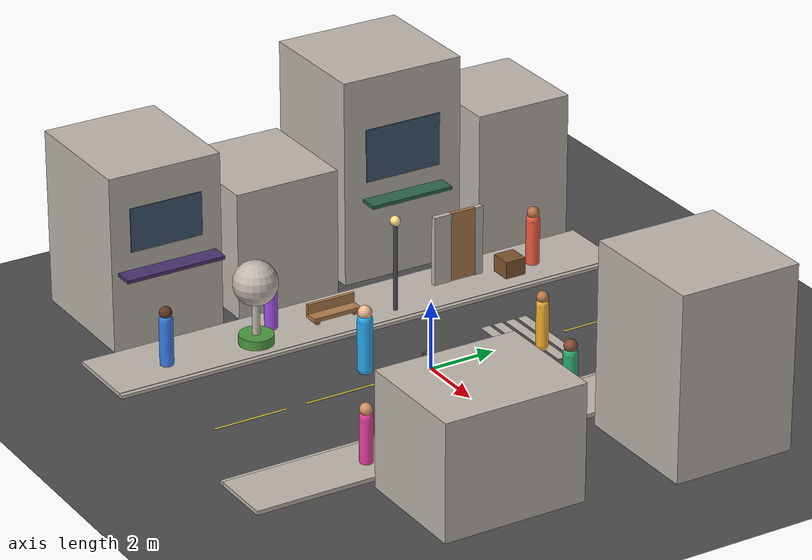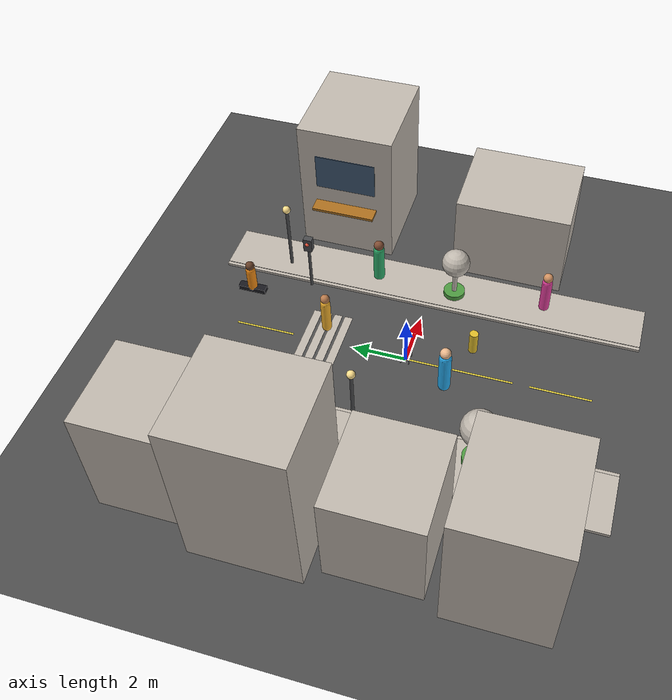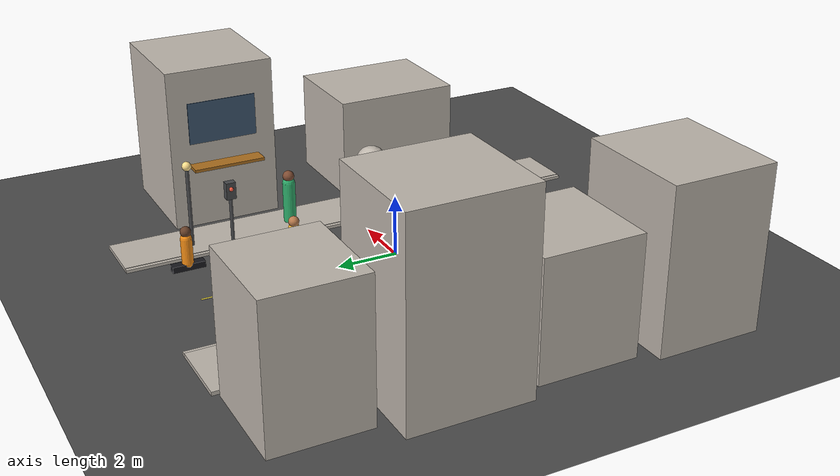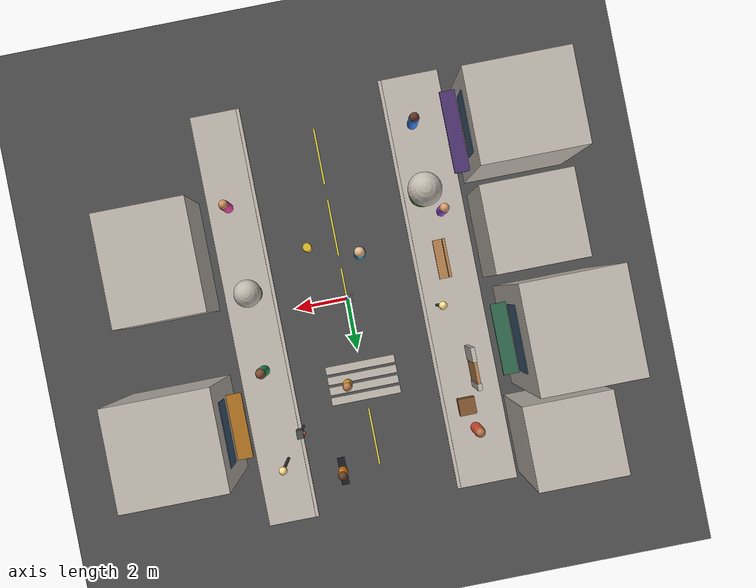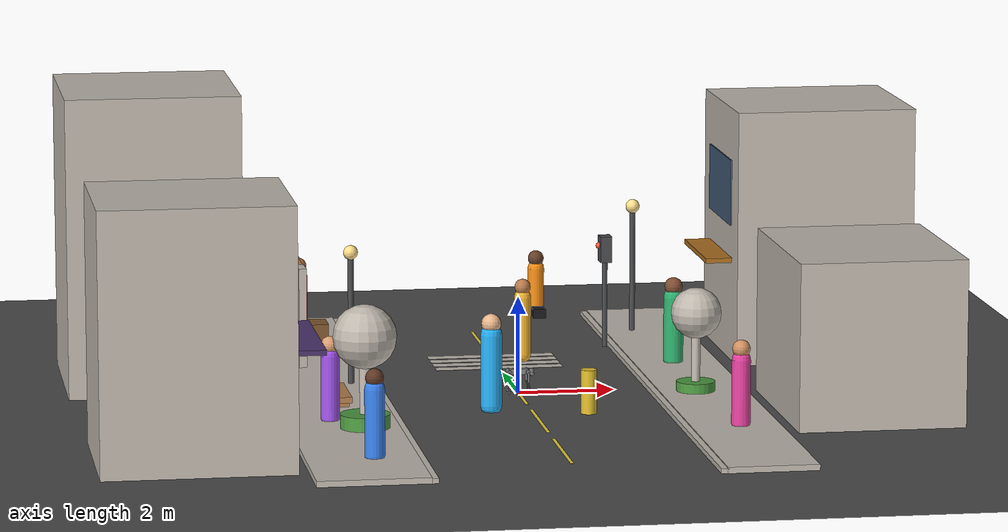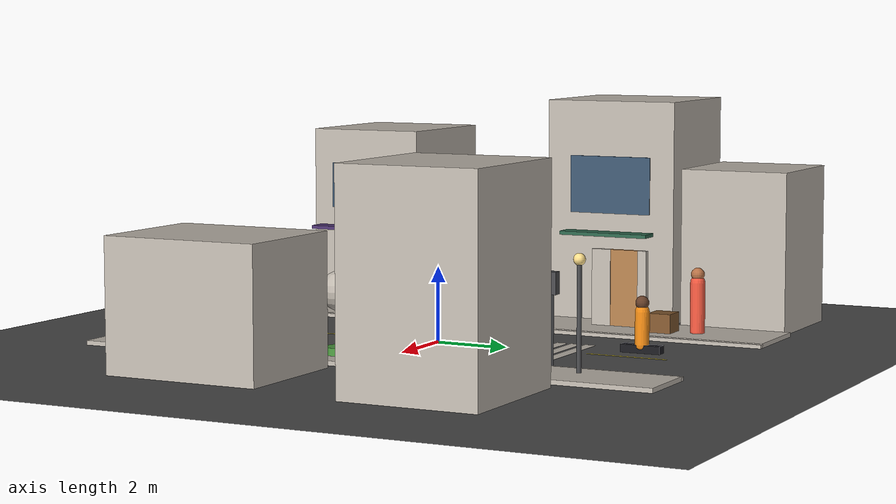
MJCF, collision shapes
<mujoco model="parcel_city_block_b">
  <include file="../../../third_party/unitree_mujoco/unitree_robots/go2/go2.xml"/>
  <compiler meshdir="../../../third_party/unitree_mujoco/unitree_robots/go2/assets"
    texturedir="assets/textures"
    angle="radian" autolimits="true"/>

  <statistic center="0 0 0.4" extent="8"/>

  <visual>
    <!-- Deliberately a different hour of day from city_block.xml: a scene
         variant that only moves boxes is a weak held-out set. -->
    <headlight diffuse="0.52 0.52 0.55" ambient="0.30 0.31 0.34" specular="0 0 0"/>
    <rgba haze="0.52 0.54 0.58 1"/>
    <global azimuth="35" elevation="-24"/>
  </visual>

  <asset>
    <texture type="skybox" builtin="gradient" rgb1="0.55 0.60 0.68" rgb2="0.12 0.14 0.18"
      width="512" height="3072"/>
    <texture type="2d" name="asphalt_b" file="road_asphalt_b.png"/>
    <texture type="cube" name="sidewalk_b" file="sidewalk_concrete_b.png"/>
    <texture type="cube" name="curb_b" file="curb_concrete.png"/>
    <texture type="cube" name="crosswalk_b" file="crosswalk_paint.png"/>
    <texture type="cube" name="brick_b" file="facade_brick_b.png"/>
    <texture type="cube" name="beige_b" file="facade_beige_b.png"/>
    <texture type="cube" name="plaster_b" file="facade_plaster_b.png"/>
    <texture type="cube" name="bench_b" file="bench_wood_b.png"/>
    <texture type="cube" name="door_b" file="door_wood_b.png"/>
    <texture type="cube" name="metal_b" file="city_metal.png"/>
    <texture type="cube" name="bark_b" file="tree_bark.png"/>
    <texture type="cube" name="canopy_b" file="tree_canopy.png"/>
    <texture type="cube" name="grass_b" file="grass.png"/>

    <material name="asphalt" texture="asphalt_b" texuniform="true" texrepeat="6 6"
      reflectance="0.04"/>
    <material name="sidewalk" texture="sidewalk_b" texuniform="true" texrepeat="1.3 1.3"
      reflectance="0.07"/>
    <material name="building_a" texture="plaster_b" texuniform="true" texrepeat="0.45 0.45"/>
    <material name="building_b" texture="brick_b" texuniform="true" texrepeat="0.6 0.6"/>
    <material name="building_c" texture="beige_b" texuniform="true" texrepeat="0.4 0.4"/>
    <material name="crosswalk" texture="crosswalk_b" texuniform="false" texrepeat="3 1"/>
    <material name="bench" texture="bench_b" texuniform="false" texrepeat="3 1"/>
    <material name="curb" texture="curb_b" texuniform="true" texrepeat="3 3"/>
    <material name="city_grass" texture="grass_b" texuniform="true" texrepeat="1.2 1.2"/>
    <material name="city_glass" rgba="0.24 0.34 0.44 1" reflectance="0.28"/>
    <material name="city_metal" texture="metal_b" texuniform="true" texrepeat="1 1"
      rgba="0.38 0.40 0.44 1"/>
    <material name="entry_wall" texture="brick_b" texuniform="true" texrepeat="0.8 0.8"/>
    <material name="door_leaf" texture="door_b" texuniform="true" texrepeat="0.7 0.7"/>
    <material name="tree_bark" texture="bark_b" texuniform="true" texrepeat="1.4 1.4"/>
    <material name="tree_canopy" texture="canopy_b" texuniform="true" texrepeat="1.3 1.3"/>
    <material name="crate_wood" texture="bench_b" texuniform="true" texrepeat="1.5 1.5"
      rgba="0.72 0.68 0.60 1"/>

    <!-- Three storefronts this block does not share with city_block.xml. -->
    <texture type="2d" name="shopfront_e" file="storefront_e.png"/>
    <texture type="2d" name="shopfront_f" file="storefront_f.png"/>
    <texture type="2d" name="shopfront_g" file="storefront_g.png"/>
    <material name="shopfront_e" texture="shopfront_e"/>
    <material name="shopfront_f" texture="shopfront_f"/>
    <material name="shopfront_g" texture="shopfront_g"/>

    <texture type="2d" name="person_1" file="person_1.png"/>
    <texture type="2d" name="person_2" file="person_2.png"/>
    <texture type="2d" name="person_3" file="person_3.png"/>
    <texture type="2d" name="person_4" file="person_4.png"/>
    <texture type="2d" name="person_5" file="person_5.png"/>
    <texture type="2d" name="person_6" file="person_6.png"/>
    <material name="person_1" texture="person_1"/>
    <material name="person_2" texture="person_2"/>
    <material name="person_3" texture="person_3"/>
    <material name="person_4" texture="person_4"/>
    <material name="person_5" texture="person_5"/>
    <material name="person_6" texture="person_6"/>

    <mesh name="human_a" inertia="shell"
      file="../../../../../src/parcel_robot/scenes/assets/meshes/human_a.obj"/>
    <mesh name="human_b" inertia="shell"
      file="../../../../../src/parcel_robot/scenes/assets/meshes/human_b.obj"/>
    <mesh name="human_c" inertia="shell"
      file="../../../../../src/parcel_robot/scenes/assets/meshes/human_c.obj"/>
    <mesh name="human_d" inertia="shell"
      file="../../../../../src/parcel_robot/scenes/assets/meshes/human_d.obj"/>
    <mesh name="shopfront_b1" inertia="shell" scale="3.2 1 2.7"
      file="../../../../../src/parcel_robot/scenes/assets/meshes/panel.obj"/>
    <mesh name="shopfront_b2" inertia="shell" scale="2.5 1 2.4"
      file="../../../../../src/parcel_robot/scenes/assets/meshes/panel.obj"/>
    <mesh name="shopfront_b3" inertia="shell" scale="2.8 1 2.9"
      file="../../../../../src/parcel_robot/scenes/assets/meshes/panel.obj"/>
    <mesh name="shopfront_b4" inertia="shell" scale="2.6 1 2.5"
      file="../../../../../src/parcel_robot/scenes/assets/meshes/panel.obj"/>
  </asset>

  <worldbody>
    <light pos="-4 3 6" dir="0.3 -0.2 -1" diffuse="0.72 0.71 0.68" castshadow="true"/>
    <light pos="4 -3 5" dir="-0.25 0.2 -1" diffuse="0.30 0.32 0.36"/>

    <!-- The street runs NORTH-SOUTH here. -->
    <geom name="road" type="plane" size="12 12 0.05" material="asphalt" friction="0.9"/>

    <!-- Sidewalks flank the carriageway on the west and the east. -->
    <geom name="sidewalk" type="box" pos="-4.0 0 0.06" size="1.1 8 0.06" material="sidewalk"/>
    <geom name="curb_west" type="box" pos="-2.85 0 0.05" size="0.08 8 0.05" material="curb"/>
    <geom name="sidewalk_east" type="box" pos="3.7 0 0.06" size="0.9 8 0.06" material="sidewalk"/>
    <geom name="curb_east" type="box" pos="2.75 0 0.05" size="0.08 8 0.05" material="curb"/>

    <!-- Centre line, dashed along the street's own axis. -->
    <geom name="lane_1" type="box" pos="0 -5.6 0.003" size="0.035 1.1 0.003" rgba="0.9 0.82 0.24 1"/>
    <geom name="lane_2" type="box" pos="0 -2.8 0.003" size="0.035 1.1 0.003" rgba="0.9 0.82 0.24 1"/>
    <geom name="lane_3" type="box" pos="0 -0.1 0.003" size="0.035 1.1 0.003" rgba="0.9 0.82 0.24 1"/>
    <geom name="lane_4" type="box" pos="0 5.4 0.003" size="0.035 1.1 0.003" rgba="0.9 0.82 0.24 1"/>

    <!-- Crossing near the north end, stripes running across the carriageway. -->
    <geom name="xw1" type="box" pos="0 2.6 0.002" size="1.35 0.15 0.002" material="crosswalk"/>
    <geom name="xw2" type="box" pos="0 3.0 0.002" size="1.35 0.15 0.002" material="crosswalk"/>
    <geom name="xw3" type="box" pos="0 3.4 0.002" size="1.35 0.15 0.002" material="crosswalk"/>
    <geom name="xw4" type="box" pos="0 3.8 0.002" size="1.35 0.15 0.002" material="crosswalk"/>

    <!-- Five buildings behind the west sidewalk, two behind the east one. -->
    <geom name="bldg_1" type="box" pos="-7.2 -5.2 2.6" size="1.9 1.7 2.6" material="building_a"/>
    <geom name="bldg_2" type="box" pos="-7.0 -1.4 1.9" size="1.7 1.6 1.9" material="building_b"/>
    <geom name="bldg_3" type="box" pos="-7.4 2.5 3.1" size="1.8 1.9 3.1" material="building_c"/>
    <geom name="bldg_4" type="box" pos="-6.8 6.3 2.2" size="1.6 1.5 2.2" material="building_b"/>
    <geom name="bldg_5" type="box" pos="6.9 3.8 2.7" size="1.9 1.8 2.7" material="building_a"/>
    <geom name="bldg_6" type="box" pos="6.6 -2.6 1.7" size="1.7 2.1 1.7" material="building_c"/>

    <!-- Storefronts. West-side faces look east (+x); the east-side ones look
         west (-x), so the block reads correctly from the carriageway. -->
    <geom name="vis_shopfront_1" type="mesh" mesh="shopfront_b1" material="shopfront_e"
      pos="-5.265 -5.2 0.06" euler="0 0 -1.5707963" contype="0" conaffinity="0" density="0"/>
    <geom name="vis_shopfront_2" type="mesh" mesh="shopfront_b2" material="shopfront_f"
      pos="-5.265 -1.4 0.06" euler="0 0 -1.5707963" contype="0" conaffinity="0" density="0"/>
    <geom name="vis_shopfront_3" type="mesh" mesh="shopfront_b3" material="shopfront_g"
      pos="-5.565 2.5 0.06" euler="0 0 -1.5707963" contype="0" conaffinity="0" density="0"/>
    <geom name="vis_shopfront_4" type="mesh" mesh="shopfront_b4" material="shopfront_f"
      pos="4.965 3.8 0.06" euler="0 0 1.5707963" contype="0" conaffinity="0" density="0"/>

    <geom name="vis_awning_1" type="box" pos="-5.02 -5.2 2.32" size="0.28 1.50 0.05"
      rgba="0.30 0.20 0.44 1" contype="0" conaffinity="0" density="0"/>
    <geom name="vis_awning_3" type="box" pos="-5.32 2.5 2.50" size="0.28 1.30 0.05"
      rgba="0.18 0.40 0.30 1" contype="0" conaffinity="0" density="0"/>
    <geom name="vis_awning_4" type="box" pos="4.72 3.8 2.16" size="0.28 1.20 0.05"
      rgba="0.68 0.44 0.12 1" contype="0" conaffinity="0" density="0"/>

    <!-- Upper glazing above the shopfronts. -->
    <geom name="window_1" type="box" pos="-5.28 -5.2 3.55" size="0.015 1.1 0.65"
      material="city_glass"/>
    <geom name="window_2" type="box" pos="-5.58 2.5 3.85" size="0.015 1.2 0.8"
      material="city_glass"/>
    <geom name="window_3" type="box" pos="4.98 3.8 3.60" size="0.015 1.15 0.7"
      material="city_glass"/>

    <!-- Planted plaza: two trees, on opposite sides this time. -->
    <geom name="planter_1" type="cylinder" pos="-3.6 -3.4 0.20" size="0.5 0.20" material="city_grass"/>
    <geom name="tree_1" type="cylinder" pos="-3.6 -3.4 0.95" size="0.11 0.78" material="tree_bark"/>
    <geom name="tree_top_1" type="sphere" pos="-3.6 -3.4 1.95" size="0.64" material="tree_canopy"/>
    <geom name="planter_2" type="cylinder" pos="3.55 -0.9 0.16" size="0.40 0.16" material="city_grass"/>
    <geom name="tree_2" type="cylinder" pos="3.55 -0.9 0.86" size="0.09 0.70" material="tree_bark"/>
    <geom name="tree_top_2" type="sphere" pos="3.55 -0.9 1.74" size="0.52" material="tree_canopy"/>

    <geom name="entry_wall_1" type="box" pos="-4.15 2.90 1.17" size="0.08 0.275 1.05"
      material="entry_wall"/>
    <geom name="door_1" type="box" pos="-4.15 3.575 1.17" size="0.06 0.4 1.05"
      material="door_leaf"/>
    <geom name="entry_wall_2" type="box" pos="-4.15 4.10 1.17" size="0.08 0.125 1.05"
      material="entry_wall"/>

    <!-- Street furniture. -->
    <geom name="lamp_post_1" type="cylinder" pos="-3.35 0.9 1.40" size="0.06 1.40" material="city_metal"/>
    <geom name="lamp_head_1" type="sphere" pos="-3.35 0.9 2.86" size="0.15" rgba="1 0.88 0.55 1"/>
    <geom name="lamp_post_2" type="cylinder" pos="3.40 5.6 1.40" size="0.06 1.40" material="city_metal"/>
    <geom name="lamp_head_2" type="sphere" pos="3.40 5.6 2.86" size="0.15" rgba="1 0.88 0.55 1"/>
    <geom name="signal_post" type="cylinder" pos="2.60 4.5 1.05" size="0.055 1.05" material="city_metal"/>
    <geom name="signal_box" type="box" pos="2.60 4.5 2.14" size="0.12 0.16 0.28" material="city_metal"/>
    <geom name="signal_walk" type="sphere" pos="2.47 4.5 2.21" size="0.07" rgba="0.95 0.35 0.25 1"/>

    <!-- Bench, turned to face the street rather than along it. -->
    <geom name="bench_seat" type="box" pos="-3.85 -0.8 0.28" size="0.22 0.75 0.06" material="bench"/>
    <geom name="bench_back" type="box" pos="-4.03 -0.8 0.44" size="0.05 0.75 0.19" material="bench"/>
    <geom name="bench_leg_l" type="box" pos="-3.85 -1.40 0.14" size="0.18 0.05 0.14" material="bench"/>
    <geom name="bench_leg_r" type="box" pos="-3.85 -0.20 0.14" size="0.18 0.05 0.14" material="bench"/>

    <geom name="obstacle_crate" type="box" pos="-3.7 4.9 0.32" size="0.32 0.32 0.32"
      material="crate_wood"/>
    <geom name="obstacle_bollard" type="cylinder" pos="1.1 -2.2 0.45" size="0.16 0.45"
      rgba="0.88 0.74 0.16 1"/>

    <body name="owner" mocap="true" pos="-0.8 -1.6 0">
      <geom name="owner_body" type="capsule" fromto="0 0 0.1 0 0 1.55" size="0.22"
        contype="0" conaffinity="0" rgba="0.15 0.68 0.95 1" group="4"/>
      <geom name="owner_head" type="sphere" pos="0 0 1.78" size="0.2"
        contype="0" conaffinity="0" rgba="0.92 0.72 0.55 1" group="4"/>
      <geom name="vis_owner" type="mesh" mesh="human_a" material="person_4"
        euler="0 0 1.35" contype="0" conaffinity="0" density="0"/>
    </body>

    <body name="pedestrian_1" mocap="true" pos="-3.9 5.8 0">
      <geom name="pedestrian_1_body" type="capsule" fromto="0 0 0.15 0 0 1.48" size="0.20"
        contype="0" conaffinity="0" rgba="0.95 0.35 0.25 1" group="4"/>
      <geom name="pedestrian_1_head" type="sphere" pos="0 0 1.7" size="0.18"
        contype="0" conaffinity="0" rgba="0.72 0.45 0.28 1" group="4"/>
      <geom name="vis_pedestrian_1" type="mesh" mesh="human_c" material="person_6"
        euler="0 0 -1.85" contype="0" conaffinity="0" density="0"/>
    </body>
    <body name="pedestrian_2" mocap="true" pos="-4.2 -2.6 0">
      <geom name="pedestrian_2_body" type="capsule" fromto="0 0 0.15 0 0 1.42" size="0.19"
        contype="0" conaffinity="0" rgba="0.62 0.32 0.9 1" group="4"/>
      <geom name="pedestrian_2_head" type="sphere" pos="0 0 1.64" size="0.18"
        contype="0" conaffinity="0" rgba="0.86 0.62 0.44 1" group="4"/>
      <geom name="vis_pedestrian_2" type="mesh" mesh="human_d" material="person_1"
        euler="0 0 0.35" contype="0" conaffinity="0" density="0"/>
    </body>
    <body name="pedestrian_3" mocap="true" pos="3.65 2.1 0">
      <geom name="pedestrian_3_body" type="capsule" fromto="0 0 0.15 0 0 1.5" size="0.21"
        contype="0" conaffinity="0" rgba="0.18 0.68 0.42 1" group="4"/>
      <geom name="pedestrian_3_head" type="sphere" pos="0 0 1.73" size="0.19"
        contype="0" conaffinity="0" rgba="0.5 0.3 0.2 1" group="4"/>
      <geom name="vis_pedestrian_3" type="mesh" mesh="human_a" material="person_2"
        euler="0 0 2.85" contype="0" conaffinity="0" density="0"/>
    </body>
    <body name="pedestrian_4" mocap="true" pos="0.6 3.2 0">
      <geom name="pedestrian_4_body" type="capsule" fromto="0 0 0.15 0 0 1.38" size="0.18"
        contype="0" conaffinity="0" rgba="0.96 0.7 0.18 1" group="4"/>
      <geom name="pedestrian_4_head" type="sphere" pos="0 0 1.6" size="0.17"
        contype="0" conaffinity="0" rgba="0.72 0.48 0.3 1" group="4"/>
      <geom name="vis_pedestrian_4" type="mesh" mesh="human_b" material="person_5"
        euler="0 0 -0.45" contype="0" conaffinity="0" density="0"/>
    </body>
    <body name="pedestrian_5" mocap="true" pos="-3.75 -6.1 0">
      <geom name="pedestrian_5_body" type="capsule" fromto="0 0 0.15 0 0 1.46" size="0.20"
        contype="0" conaffinity="0" rgba="0.22 0.5 0.92 1" group="4"/>
      <geom name="pedestrian_5_head" type="sphere" pos="0 0 1.68" size="0.18"
        contype="0" conaffinity="0" rgba="0.38 0.22 0.15 1" group="4"/>
      <geom name="vis_pedestrian_5" type="mesh" mesh="human_d" material="person_3"
        euler="0 0 1.60" contype="0" conaffinity="0" density="0"/>
    </body>
    <body name="pedestrian_6" mocap="true" pos="3.8 -4.3 0">
      <geom name="pedestrian_6_body" type="capsule" fromto="0 0 0.15 0 0 1.44" size="0.19"
        contype="0" conaffinity="0" rgba="0.9 0.25 0.62 1" group="4"/>
      <geom name="pedestrian_6_head" type="sphere" pos="0 0 1.66" size="0.18"
        contype="0" conaffinity="0" rgba="0.82 0.57 0.38 1" group="4"/>
      <geom name="vis_pedestrian_6" type="mesh" mesh="human_c" material="person_5"
        euler="0 0 -2.90" contype="0" conaffinity="0" density="0"/>
    </body>
    <body name="cyclist_1" mocap="true" pos="1.4 6.4 0">
      <geom name="cyclist_1_bike" type="box" pos="0 0 0.48" size="0.14 0.52 0.10"
        contype="0" conaffinity="0" rgba="0.10 0.10 0.12 1"/>
      <geom name="cyclist_1_body" type="capsule" fromto="0 0 0.58 0 0 1.4" size="0.18"
        contype="0" conaffinity="0" rgba="0.95 0.55 0.08 1" group="4"/>
      <geom name="cyclist_1_head" type="sphere" pos="0 0 1.62" size="0.17"
        contype="0" conaffinity="0" rgba="0.4 0.25 0.16 1" group="4"/>
      <geom name="vis_cyclist_1" type="mesh" mesh="human_b" material="person_2"
        pos="0 -0.04 0.14" euler="0 0 -1.5707963" contype="0" conaffinity="0" density="0"/>
    </body>
  </worldbody>
</mujoco>

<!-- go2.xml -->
<mujoco model="go2">
  <compiler angle="radian" meshdir="assets" autolimits="true" />

  <option cone="elliptic" impratio="100" />

  <default>
    <default class="go2">
      <geom friction="0.4" margin="0.001" condim="1"/>
      <joint axis="0 1 0" damping="0.1" armature="0.01" frictionloss="0.2"/>
      <motor ctrlrange="-23.7 23.7"/>
      <default class="abduction">
        <joint axis="1 0 0" range="-1.0472 1.0472"/>
      </default>
      <default class="hip">
        <default class="front_hip">
          <joint range="-1.5708 3.4907"/>
        </default>
        <default class="back_hip">
          <joint range="-0.5236 4.5379"/>
        </default>
      </default>
      <default class="knee">
        <joint range="-2.7227 -0.83776"/>
        <motor ctrlrange="-45.43 45.43"/>
      </default>
      <default class="visual">
        <geom type="mesh" contype="0" conaffinity="0" group="2"/>
      </default>
      <default class="collision">
        <geom group="3"/>
        <default class="foot">
          <geom size="0.022" pos="-0.002 0 -0.213" priority="1" condim="6"
            friction="0.4 0.02 0.01"/>
        </default>
      </default>
    </default>
  </default>

  <asset>
    <material name="metal" rgba=".9 .95 .95 1" />
    <material name="black" rgba="0 0 0 1" />
    <material name="white" rgba="1 1 1 1" />
    <material name="gray" rgba="0.671705 0.692426 0.774270 1" />

    <mesh file="base_0.obj" />
    <mesh file="base_1.obj" />
    <mesh file="base_2.obj" />
    <mesh file="base_3.obj" />
    <mesh file="base_4.obj" />
    <mesh file="hip_0.obj" />
    <mesh file="hip_1.obj" />
    <mesh file="thigh_0.obj" />
    <mesh file="thigh_1.obj" />
    <mesh file="thigh_mirror_0.obj" />
    <mesh file="thigh_mirror_1.obj" />
    <mesh file="calf_0.obj" />
    <mesh file="calf_1.obj" />
    <mesh file="calf_mirror_0.obj" />
    <mesh file="calf_mirror_1.obj" />
    <mesh file="foot.obj" />
  </asset>

  <worldbody>
    <body name="base_link" pos="0 0 0.445" childclass="go2">
      <inertial pos="0.021112 0 -0.005366" quat="-0.000543471 0.713435 -0.00173769 0.700719"
        mass="6.921"
        diaginertia="0.107027 0.0980771 0.0244531" />
      <freejoint />
      <geom mesh="base_0" material="black" class="visual" />
      <geom mesh="base_1" material="black" class="visual" />
      <geom mesh="base_2" material="black" class="visual" />
      <geom mesh="base_3" material="white" class="visual" />
      <geom mesh="base_4" material="gray" class="visual" />
      <geom size="0.1881 0.04675 0.057" type="box" class="collision" />
      <geom size="0.05 0.045" pos="0.285 0 0.01" type="cylinder" class="collision" />
      <geom size="0.047" pos="0.293 0 -0.06" class="collision" />
      <site name="imu" pos="-0.02557 0 0.04232" />
      <camera
        name="Gurukul_depth"
        pos="0.33 0 0.08"
        xyaxes="0 -1 0 0.3420201433 0 0.9396926208"
        resolution="106 60"
        focal="0.11041 0.11041"
        sensorsize="0.20955 0.12240"
        principalpixel="0 0"
      />
      <body name="FL_hip" pos="0.1934 0.0465 0">
        <inertial pos="-0.0054 0.00194 -0.000105" quat="0.497014 0.499245 0.505462 0.498237"
          mass="0.678"
          diaginertia="0.00088403 0.000596003 0.000479967" />
        <joint name="FL_hip_joint" class="abduction" />
        <geom mesh="hip_0" material="metal" class="visual" />
        <geom mesh="hip_1" material="gray" class="visual" />
        <geom size="0.046 0.02" pos="0 0.08 0" quat="1 1 0 0" type="cylinder" class="collision" />
        <body name="FL_thigh" pos="0 0.0955 0">
          <inertial pos="-0.00374 -0.0223 -0.0327" quat="0.829533 0.0847635 -0.0200632 0.551623"
            mass="1.152"
            diaginertia="0.00594973 0.00584149 0.000878787" />
          <joint name="FL_thigh_joint" class="front_hip" />
          <geom mesh="thigh_0" material="metal" class="visual" />
          <geom mesh="thigh_1" material="gray" class="visual" />
          <geom size="0.1065 0.01225 0.017" pos="0 0 -0.1065" quat="0.707107 0 0.707107 0"
            type="box" class="collision" />
          <body name="FL_calf" pos="0 0 -0.213">
            <inertial pos="0.00629595 -0.000622121 -0.141417"
              quat="0.710672 0.00154099 -0.00450087 0.703508"
              mass="0.241352" diaginertia="0.0014901 0.00146356 5.31397e-05" />
            <joint name="FL_calf_joint" class="knee" />
            <geom mesh="calf_0" material="gray" class="visual" />
            <geom mesh="calf_1" material="black" class="visual" />
            <geom size="0.012 0.06" pos="0.008 0 -0.06" quat="0.994493 0 -0.104807 0"
              type="cylinder" class="collision" />
            <geom size="0.011 0.0325" pos="0.02 0 -0.148" quat="0.999688 0 0.0249974 0"
              type="cylinder" class="collision" />
            <geom pos="0 0 -0.213" mesh="foot" class="visual" material="black" />
            <geom name="FL" class="foot" />
            <body name="FL_foot" pos="0 0 -0.213" />
          </body>
        </body>
      </body>
      <body name="FR_hip" pos="0.1934 -0.0465 0">
        <inertial pos="-0.0054 -0.00194 -0.000105" quat="0.498237 0.505462 0.499245 0.497014"
          mass="0.678"
          diaginertia="0.00088403 0.000596003 0.000479967" />
        <joint name="FR_hip_joint" class="abduction" />
        <geom mesh="hip_0" material="metal" class="visual" quat="4.63268e-05 1 0 0" />
        <geom mesh="hip_1" material="gray" class="visual" quat="4.63268e-05 1 0 0" />
        <geom size="0.046 0.02" pos="0 -0.08 0" quat="0.707107 0.707107 0 0" type="cylinder"
          class="collision" />
        <body name="FR_thigh" pos="0 -0.0955 0">
          <inertial pos="-0.00374 0.0223 -0.0327" quat="0.551623 -0.0200632 0.0847635 0.829533"
            mass="1.152"
            diaginertia="0.00594973 0.00584149 0.000878787" />
          <joint name="FR_thigh_joint" class="front_hip" />
          <geom mesh="thigh_mirror_0" material="metal" class="visual" />
          <geom mesh="thigh_mirror_1" material="gray" class="visual" />
          <geom size="0.1065 0.01225 0.017" pos="0 0 -0.1065" quat="0.707107 0 0.707107 0"
            type="box" class="collision" />
          <body name="FR_calf" pos="0 0 -0.213">
            <inertial pos="0.00629595 0.000622121 -0.141417"
              quat="0.703508 -0.00450087 0.00154099 0.710672"
              mass="0.241352" diaginertia="0.0014901 0.00146356 5.31397e-05" />
            <joint name="FR_calf_joint" class="knee" />
            <geom mesh="calf_mirror_0" material="gray" class="visual" />
            <geom mesh="calf_mirror_1" material="black" class="visual" />
            <geom size="0.013 0.06" pos="0.01 0 -0.06" quat="0.995004 0 -0.0998334 0"
              type="cylinder" class="collision" />
            <geom size="0.011 0.0325" pos="0.02 0 -0.148" quat="0.999688 0 0.0249974 0"
              type="cylinder" class="collision" />
            <geom pos="0 0 -0.213" mesh="foot" class="visual" material="black" />
            <geom name="FR" class="foot" />
            <body name="FR_foot" pos="0 0 -0.213" />
          </body>
        </body>
      </body>
      <body name="RL_hip" pos="-0.1934 0.0465 0">
        <inertial pos="0.0054 0.00194 -0.000105" quat="0.505462 0.498237 0.497014 0.499245"
          mass="0.678"
          diaginertia="0.00088403 0.000596003 0.000479967" />
        <joint name="RL_hip_joint" class="abduction" />
        <geom mesh="hip_0" material="metal" class="visual" quat="4.63268e-05 0 1 0" />
        <geom mesh="hip_1" material="gray" class="visual" quat="4.63268e-05 0 1 0" />
        <geom size="0.046 0.02" pos="0 0.08 0" quat="0.707107 0.707107 0 0" type="cylinder"
          class="collision" />
        <body name="RL_thigh" pos="0 0.0955 0">
          <inertial pos="-0.00374 -0.0223 -0.0327" quat="0.829533 0.0847635 -0.0200632 0.551623"
            mass="1.152"
            diaginertia="0.00594973 0.00584149 0.000878787" />
          <joint name="RL_thigh_joint" class="back_hip" />
          <geom mesh="thigh_0" material="metal" class="visual" />
          <geom mesh="thigh_1" material="gray" class="visual" />
          <geom size="0.1065 0.01225 0.017" pos="0 0 -0.1065" quat="0.707107 0 0.707107 0"
            type="box" class="collision" />
          <body name="RL_calf" pos="0 0 -0.213">
            <inertial pos="0.00629595 -0.000622121 -0.141417"
              quat="0.710672 0.00154099 -0.00450087 0.703508"
              mass="0.241352" diaginertia="0.0014901 0.00146356 5.31397e-05" />
            <joint name="RL_calf_joint" class="knee" />
            <geom mesh="calf_0" material="gray" class="visual" />
            <geom mesh="calf_1" material="black" class="visual" />
            <geom size="0.013 0.06" pos="0.01 0 -0.06" quat="0.995004 0 -0.0998334 0"
              type="cylinder" class="collision" />
            <geom size="0.011 0.0325" pos="0.02 0 -0.148" quat="0.999688 0 0.0249974 0"
              type="cylinder" class="collision" />
            <geom pos="0 0 -0.213" mesh="foot" class="visual" material="black" />
            <geom name="RL" class="foot" />
            <body name="RL_foot" pos="0 0 -0.213" />
          </body>
        </body>
      </body>
      <body name="RR_hip" pos="-0.1934 -0.0465 0">
        <inertial pos="0.0054 -0.00194 -0.000105" quat="0.499245 0.497014 0.498237 0.505462"
          mass="0.678"
          diaginertia="0.00088403 0.000596003 0.000479967" />
        <joint name="RR_hip_joint" class="abduction" />
        <geom mesh="hip_0" material="metal" class="visual"
          quat="2.14617e-09 4.63268e-05 4.63268e-05 -1" />
        <geom mesh="hip_1" material="gray" class="visual"
          quat="2.14617e-09 4.63268e-05 4.63268e-05 -1" />
        <geom size="0.046 0.02" pos="0 -0.08 0" quat="0.707107 0.707107 0 0" type="cylinder"
          class="collision" />
        <body name="RR_thigh" pos="0 -0.0955 0">
          <inertial pos="-0.00374 0.0223 -0.0327" quat="0.551623 -0.0200632 0.0847635 0.829533"
            mass="1.152"
            diaginertia="0.00594973 0.00584149 0.000878787" />
          <joint name="RR_thigh_joint" class="back_hip" />
          <geom mesh="thigh_mirror_0" material="metal" class="visual" />
          <geom mesh="thigh_mirror_1" material="gray" class="visual" />
          <geom size="0.1065 0.01225 0.017" pos="0 0 -0.1065" quat="0.707107 0 0.707107 0"
            type="box" class="collision" />
          <body name="RR_calf" pos="0 0 -0.213">
            <inertial pos="0.00629595 0.000622121 -0.141417"
              quat="0.703508 -0.00450087 0.00154099 0.710672"
              mass="0.241352" diaginertia="0.0014901 0.00146356 5.31397e-05" />
            <joint name="RR_calf_joint" class="knee" />
            <geom mesh="calf_mirror_0" material="gray" class="visual" />
            <geom mesh="calf_mirror_1" material="black" class="visual" />
            <geom size="0.013 0.06" pos="0.01 0 -0.06" quat="0.995004 0 -0.0998334 0"
              type="cylinder" class="collision" />
            <geom size="0.011 0.0325" pos="0.02 0 -0.148" quat="0.999688 0 0.0249974 0"
              type="cylinder" class="collision" />
            <geom pos="0 0 -0.213" mesh="foot" class="visual" material="black" />
            <geom name="RR" class="foot" />
            <body name="RR_foot" pos="0 0 -0.213" />
          </body>
        </body>
      </body>
    </body>
  </worldbody>

  <actuator>
    <motor class="abduction" name="FR_hip" joint="FR_hip_joint" />
    <motor class="hip" name="FR_thigh" joint="FR_thigh_joint" />
    <motor class="knee" name="FR_calf" joint="FR_calf_joint" />
    <motor class="abduction" name="FL_hip" joint="FL_hip_joint" />
    <motor class="hip" name="FL_thigh" joint="FL_thigh_joint" />
    <motor class="knee" name="FL_calf" joint="FL_calf_joint" />
    <motor class="abduction" name="RR_hip" joint="RR_hip_joint" />
    <motor class="hip" name="RR_thigh" joint="RR_thigh_joint" />
    <motor class="knee" name="RR_calf" joint="RR_calf_joint" />
    <motor class="abduction" name="RL_hip" joint="RL_hip_joint" />
    <motor class="hip" name="RL_thigh" joint="RL_thigh_joint" />
    <motor class="knee" name="RL_calf" joint="RL_calf_joint" />
  </actuator>

  <sensor>
    <jointpos name="FR_hip_pos" joint="FR_hip_joint" />
    <jointpos name="FR_thigh_pos" joint="FR_thigh_joint" />
    <jointpos name="FR_calf_pos" joint="FR_calf_joint" />
    <jointpos name="FL_hip_pos" joint="FL_hip_joint" />
    <jointpos name="FL_thigh_pos" joint="FL_thigh_joint" />
    <jointpos name="FL_calf_pos" joint="FL_calf_joint" />
    <jointpos name="RR_hip_pos" joint="RR_hip_joint" />
    <jointpos name="RR_thigh_pos" joint="RR_thigh_joint" />
    <jointpos name="RR_calf_pos" joint="RR_calf_joint" />
    <jointpos name="RL_hip_pos" joint="RL_hip_joint" />
    <jointpos name="RL_thigh_pos" joint="RL_thigh_joint" />
    <jointpos name="RL_calf_pos" joint="RL_calf_joint" />

    <jointvel name="FR_hip_vel" joint="FR_hip_joint" />
    <jointvel name="FR_thigh_vel" joint="FR_thigh_joint" />
    <jointvel name="FR_calf_vel" joint="FR_calf_joint" />
    <jointvel name="FL_hip_vel" joint="FL_hip_joint" />
    <jointvel name="FL_thigh_vel" joint="FL_thigh_joint" />
    <jointvel name="FL_calf_vel" joint="FL_calf_joint" />
    <jointvel name="RR_hip_vel" joint="RR_hip_joint" />
    <jointvel name="RR_thigh_vel" joint="RR_thigh_joint" />
    <jointvel name="RR_calf_vel" joint="RR_calf_joint" />
    <jointvel name="RL_hip_vel" joint="RL_hip_joint" />
    <jointvel name="RL_thigh_vel" joint="RL_thigh_joint" />
    <jointvel name="RL_calf_vel" joint="RL_calf_joint" />

    <jointactuatorfrc name="FR_hip_torque" joint="FR_hip_joint" noise="0.01" />
    <jointactuatorfrc name="FR_thigh_torque" joint="FR_thigh_joint" noise="0.01" />
    <jointactuatorfrc name="FR_calf_torque" joint="FR_calf_joint" noise="0.01" />
    <jointactuatorfrc name="FL_hip_torque" joint="FL_hip_joint" noise="0.01" />
    <jointactuatorfrc name="FL_thigh_torque" joint="FL_thigh_joint" noise="0.01" />
    <jointactuatorfrc name="FL_calf_torque" joint="FL_calf_joint" noise="0.01" />
    <jointactuatorfrc name="RR_hip_torque" joint="RR_hip_joint" noise="0.01" />
    <jointactuatorfrc name="RR_thigh_torque" joint="RR_thigh_joint" noise="0.01" />
    <jointactuatorfrc name="RR_calf_torque" joint="RR_calf_joint" noise="0.01" />
    <jointactuatorfrc name="RL_hip_torque" joint="RL_hip_joint" noise="0.01" />
    <jointactuatorfrc name="RL_thigh_torque" joint="RL_thigh_joint" noise="0.01" />
    <jointactuatorfrc name="RL_calf_torque" joint="RL_calf_joint" noise="0.01" />

    <framequat name="imu_quat" objtype="site" objname="imu" />
    <gyro name="imu_gyro" site="imu" />
    <accelerometer name="imu_acc" site="imu" />

    <framepos name="frame_pos" objtype="site" objname="imu" />
    <framelinvel name="frame_vel" objtype="site" objname="imu" />
  </sensor>

  <keyframe>
    <key name="home" qpos="0 0 0.27 1 0 0 0 0 0.9 -1.8 0 0.9 -1.8 0 0.9 -1.8 0 0.9 -1.8"
      ctrl="0 0.9 -1.8 0 0.9 -1.8 0 0.9 -1.8 0 0.9 -1.8" />
  </keyframe>
</mujoco>
